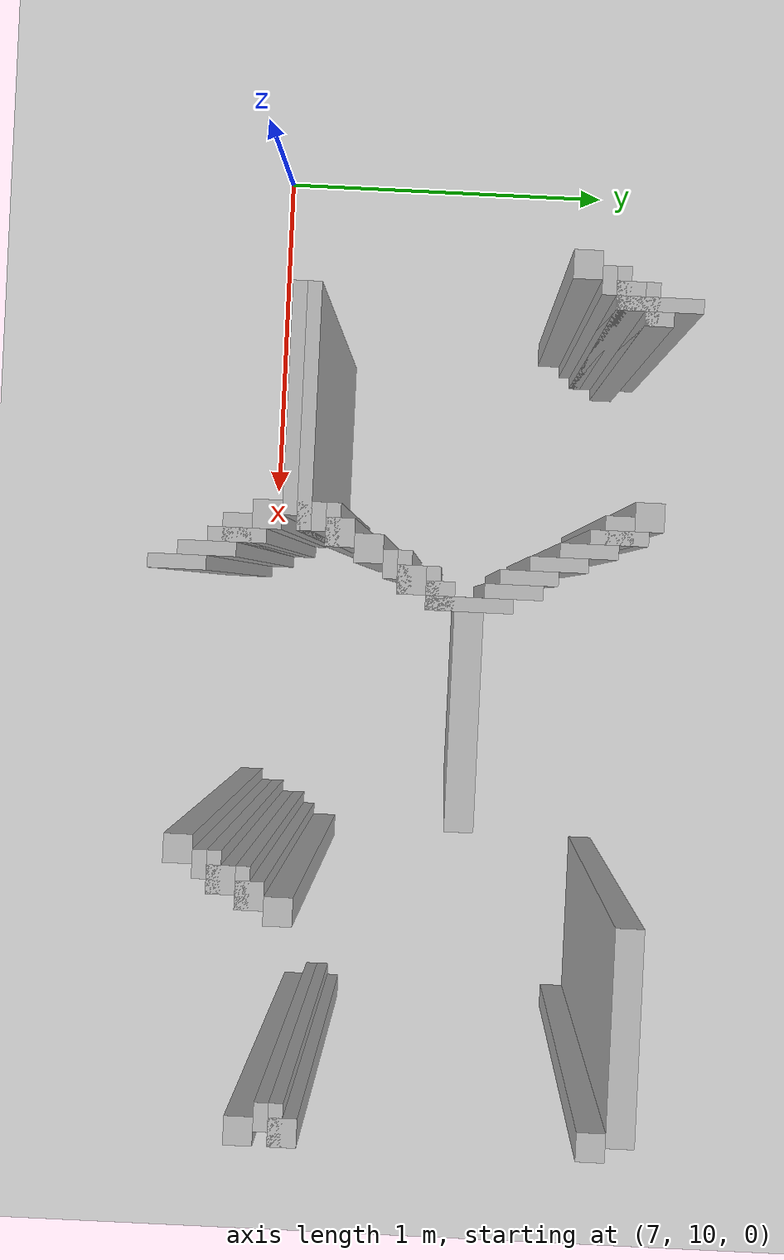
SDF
<sdf version="1.6">
 <world name="slam_world">
  <model name="ground_plane">
   <static>true</static>
   <link name="link">
    <collision name="collision">
     <geometry><plane><normal>0 0 1</normal><size>100 100</size></plane></geometry>
    </collision>
    <visual name="visual">
     <geometry><plane><normal>0 0 1</normal><size>100 100</size></plane></geometry>
     <material>
      <ambient>0.8 0.8 0.8 1</ambient>
      <diffuse>0.8 0.8 0.8 1</diffuse>
      <specular>0.8 0.8 0.8 1</specular>
     </material>
    </visual>
   </link>
  </model>
  <model name="wall_2157">
   <static>true</static>
   <pose>7.604408352668213 11.032482598607888 1.0 0 0 0</pose>
   <link name="link">
    <collision name="collision">
     <geometry><box><size>0.03480278422273782 0.2088167053364269 2.0</size></box></geometry>
    </collision>
    <visual name="visual">
     <geometry><box><size>0.03480278422273782 0.2088167053364269 2.0</size></box></geometry>
     <material><ambient>0.5 0.5 0.5 1</ambient><diffuse>0.7 0.7 0.7 1</diffuse></material>
    </visual>
   </link>
  </model>
  <model name="wall_2179">
   <static>true</static>
   <pose>7.6392111368909505 11.032482598607888 1.0 0 0 0</pose>
   <link name="link">
    <collision name="collision">
     <geometry><box><size>0.03480278422273782 0.06960556844547564 2.0</size></box></geometry>
    </collision>
    <visual name="visual">
     <geometry><box><size>0.03480278422273782 0.06960556844547564 2.0</size></box></geometry>
     <material><ambient>0.5 0.5 0.5 1</ambient><diffuse>0.7 0.7 0.7 1</diffuse></material>
    </visual>
   </link>
  </model>
  <model name="wall_2180">
   <static>true</static>
   <pose>8.109048723897912 11.032482598607888 1.0 0 0 0</pose>
   <link name="link">
    <collision name="collision">
     <geometry><box><size>0.06960556844547564 0.06960556844547564 2.0</size></box></geometry>
    </collision>
    <visual name="visual">
     <geometry><box><size>0.06960556844547564 0.06960556844547564 2.0</size></box></geometry>
     <material><ambient>0.5 0.5 0.5 1</ambient><diffuse>0.7 0.7 0.7 1</diffuse></material>
    </visual>
   </link>
  </model>
  <model name="wall_2181">
   <static>true</static>
   <pose>9.344547563805104 11.032482598607888 1.0 0 0 0</pose>
   <link name="link">
    <collision name="collision">
     <geometry><box><size>0.5220417633410672 0.06960556844547564 2.0</size></box></geometry>
    </collision>
    <visual name="visual">
     <geometry><box><size>0.5220417633410672 0.06960556844547564 2.0</size></box></geometry>
     <material><ambient>0.5 0.5 0.5 1</ambient><diffuse>0.7 0.7 0.7 1</diffuse></material>
    </visual>
   </link>
  </model>
  <model name="wall_2190">
   <static>true</static>
   <pose>7.604408352668213 11.01508120649652 1.0 0 0 0</pose>
   <link name="link">
    <collision name="collision">
     <geometry><box><size>0.10440835266821345 0.03480278422273782 2.0</size></box></geometry>
    </collision>
    <visual name="visual">
     <geometry><box><size>0.10440835266821345 0.03480278422273782 2.0</size></box></geometry>
     <material><ambient>0.5 0.5 0.5 1</ambient><diffuse>0.7 0.7 0.7 1</diffuse></material>
    </visual>
   </link>
  </model>
  <model name="wall_2191">
   <static>true</static>
   <pose>8.161252900232018 10.962877030162412 1.0 0 0 0</pose>
   <link name="link">
    <collision name="collision">
     <geometry><box><size>0.03480278422273782 0.13921113689095127 2.0</size></box></geometry>
    </collision>
    <visual name="visual">
     <geometry><box><size>0.03480278422273782 0.13921113689095127 2.0</size></box></geometry>
     <material><ambient>0.5 0.5 0.5 1</ambient><diffuse>0.7 0.7 0.7 1</diffuse></material>
    </visual>
   </link>
  </model>
  <model name="wall_2202">
   <static>true</static>
   <pose>7.587006960556844 10.962877030162412 1.0 0 0 0</pose>
   <link name="link">
    <collision name="collision">
     <geometry><box><size>0.06960556844547564 0.06960556844547564 2.0</size></box></geometry>
    </collision>
    <visual name="visual">
     <geometry><box><size>0.06960556844547564 0.06960556844547564 2.0</size></box></geometry>
     <material><ambient>0.5 0.5 0.5 1</ambient><diffuse>0.7 0.7 0.7 1</diffuse></material>
    </visual>
   </link>
  </model>
  <model name="wall_2203">
   <static>true</static>
   <pose>8.14385150812065 10.962877030162412 1.0 0 0 0</pose>
   <link name="link">
    <collision name="collision">
     <geometry><box><size>0.06960556844547564 0.06960556844547564 2.0</size></box></geometry>
    </collision>
    <visual name="visual">
     <geometry><box><size>0.06960556844547564 0.06960556844547564 2.0</size></box></geometry>
     <material><ambient>0.5 0.5 0.5 1</ambient><diffuse>0.7 0.7 0.7 1</diffuse></material>
    </visual>
   </link>
  </model>
  <model name="wall_2204">
   <static>true</static>
   <pose>9.605568445475638 10.962877030162412 1.0 0 0 0</pose>
   <link name="link">
    <collision name="collision">
     <geometry><box><size>0.06960556844547564 0.06960556844547564 2.0</size></box></geometry>
    </collision>
    <visual name="visual">
     <geometry><box><size>0.06960556844547564 0.06960556844547564 2.0</size></box></geometry>
     <material><ambient>0.5 0.5 0.5 1</ambient><diffuse>0.7 0.7 0.7 1</diffuse></material>
    </visual>
   </link>
  </model>
  <model name="wall_2214">
   <static>true</static>
   <pose>7.569605568445476 10.945475638051043 1.0 0 0 0</pose>
   <link name="link">
    <collision name="collision">
     <geometry><box><size>0.10440835266821345 0.03480278422273782 2.0</size></box></geometry>
    </collision>
    <visual name="visual">
     <geometry><box><size>0.10440835266821345 0.03480278422273782 2.0</size></box></geometry>
     <material><ambient>0.5 0.5 0.5 1</ambient><diffuse>0.7 0.7 0.7 1</diffuse></material>
    </visual>
   </link>
  </model>
  <model name="wall_2215">
   <static>true</static>
   <pose>8.196055684454755 10.893271461716937 1.0 0 0 0</pose>
   <link name="link">
    <collision name="collision">
     <geometry><box><size>0.03480278422273782 0.13921113689095127 2.0</size></box></geometry>
    </collision>
    <visual name="visual">
     <geometry><box><size>0.03480278422273782 0.13921113689095127 2.0</size></box></geometry>
     <material><ambient>0.5 0.5 0.5 1</ambient><diffuse>0.7 0.7 0.7 1</diffuse></material>
    </visual>
   </link>
  </model>
  <model name="wall_2224">
   <static>true</static>
   <pose>7.552204176334106 10.910672853828306 1.0 0 0 0</pose>
   <link name="link">
    <collision name="collision">
     <geometry><box><size>0.06960556844547564 0.03480278422273782 2.0</size></box></geometry>
    </collision>
    <visual name="visual">
     <geometry><box><size>0.06960556844547564 0.03480278422273782 2.0</size></box></geometry>
     <material><ambient>0.5 0.5 0.5 1</ambient><diffuse>0.7 0.7 0.7 1</diffuse></material>
    </visual>
   </link>
  </model>
  <model name="wall_2233">
   <static>true</static>
   <pose>7.517401392111369 10.8584686774942 1.0 0 0 0</pose>
   <link name="link">
    <collision name="collision">
     <geometry><box><size>0.06960556844547564 0.06960556844547564 2.0</size></box></geometry>
    </collision>
    <visual name="visual">
     <geometry><box><size>0.06960556844547564 0.06960556844547564 2.0</size></box></geometry>
     <material><ambient>0.5 0.5 0.5 1</ambient><diffuse>0.7 0.7 0.7 1</diffuse></material>
    </visual>
   </link>
  </model>
  <model name="wall_2234">
   <static>true</static>
   <pose>8.230858468677495 10.82366589327146 1.0 0 0 0</pose>
   <link name="link">
    <collision name="collision">
     <geometry><box><size>0.03480278422273782 0.13921113689095127 2.0</size></box></geometry>
    </collision>
    <visual name="visual">
     <geometry><box><size>0.03480278422273782 0.13921113689095127 2.0</size></box></geometry>
     <material><ambient>0.5 0.5 0.5 1</ambient><diffuse>0.7 0.7 0.7 1</diffuse></material>
    </visual>
   </link>
  </model>
  <model name="wall_2246">
   <static>true</static>
   <pose>8.265661252900232 10.754060324825986 1.0 0 0 0</pose>
   <link name="link">
    <collision name="collision">
     <geometry><box><size>0.03480278422273782 0.13921113689095127 2.0</size></box></geometry>
    </collision>
    <visual name="visual">
     <geometry><box><size>0.03480278422273782 0.13921113689095127 2.0</size></box></geometry>
     <material><ambient>0.5 0.5 0.5 1</ambient><diffuse>0.7 0.7 0.7 1</diffuse></material>
    </visual>
   </link>
  </model>
  <model name="wall_2258">
   <static>true</static>
   <pose>8.30046403712297 10.719257540603248 1.0 0 0 0</pose>
   <link name="link">
    <collision name="collision">
     <geometry><box><size>0.03480278422273782 0.13921113689095127 2.0</size></box></geometry>
    </collision>
    <visual name="visual">
     <geometry><box><size>0.03480278422273782 0.13921113689095127 2.0</size></box></geometry>
     <material><ambient>0.5 0.5 0.5 1</ambient><diffuse>0.7 0.7 0.7 1</diffuse></material>
    </visual>
   </link>
  </model>
  <model name="wall_2276">
   <static>true</static>
   <pose>8.335266821345707 10.614849187935034 1.0 0 0 0</pose>
   <link name="link">
    <collision name="collision">
     <geometry><box><size>0.03480278422273782 0.2088167053364269 2.0</size></box></geometry>
    </collision>
    <visual name="visual">
     <geometry><box><size>0.03480278422273782 0.2088167053364269 2.0</size></box></geometry>
     <material><ambient>0.5 0.5 0.5 1</ambient><diffuse>0.7 0.7 0.7 1</diffuse></material>
    </visual>
   </link>
  </model>
  <model name="wall_2295">
   <static>true</static>
   <pose>8.61368909512761 10.614849187935034 1.0 0 0 0</pose>
   <link name="link">
    <collision name="collision">
     <geometry><box><size>0.5220417633410672 0.06960556844547564 2.0</size></box></geometry>
    </collision>
    <visual name="visual">
     <geometry><box><size>0.5220417633410672 0.06960556844547564 2.0</size></box></geometry>
     <material><ambient>0.5 0.5 0.5 1</ambient><diffuse>0.7 0.7 0.7 1</diffuse></material>
    </visual>
   </link>
  </model>
  <model name="wall_2307">
   <static>true</static>
   <pose>8.317865429234338 10.54524361948956 1.0 0 0 0</pose>
   <link name="link">
    <collision name="collision">
     <geometry><box><size>0.06960556844547564 0.06960556844547564 2.0</size></box></geometry>
    </collision>
    <visual name="visual">
     <geometry><box><size>0.06960556844547564 0.06960556844547564 2.0</size></box></geometry>
     <material><ambient>0.5 0.5 0.5 1</ambient><diffuse>0.7 0.7 0.7 1</diffuse></material>
    </visual>
   </link>
  </model>
  <model name="wall_2318">
   <static>true</static>
   <pose>8.30046403712297 10.52784222737819 1.0 0 0 0</pose>
   <link name="link">
    <collision name="collision">
     <geometry><box><size>0.10440835266821345 0.03480278422273782 2.0</size></box></geometry>
    </collision>
    <visual name="visual">
     <geometry><box><size>0.10440835266821345 0.03480278422273782 2.0</size></box></geometry>
     <material><ambient>0.5 0.5 0.5 1</ambient><diffuse>0.7 0.7 0.7 1</diffuse></material>
    </visual>
   </link>
  </model>
  <model name="wall_2329">
   <static>true</static>
   <pose>8.2830626450116 10.475638051044083 1.0 0 0 0</pose>
   <link name="link">
    <collision name="collision">
     <geometry><box><size>0.06960556844547564 0.06960556844547564 2.0</size></box></geometry>
    </collision>
    <visual name="visual">
     <geometry><box><size>0.06960556844547564 0.06960556844547564 2.0</size></box></geometry>
     <material><ambient>0.5 0.5 0.5 1</ambient><diffuse>0.7 0.7 0.7 1</diffuse></material>
    </visual>
   </link>
  </model>
  <model name="wall_2340">
   <static>true</static>
   <pose>8.265661252900232 10.458236658932714 1.0 0 0 0</pose>
   <link name="link">
    <collision name="collision">
     <geometry><box><size>0.10440835266821345 0.03480278422273782 2.0</size></box></geometry>
    </collision>
    <visual name="visual">
     <geometry><box><size>0.10440835266821345 0.03480278422273782 2.0</size></box></geometry>
     <material><ambient>0.5 0.5 0.5 1</ambient><diffuse>0.7 0.7 0.7 1</diffuse></material>
    </visual>
   </link>
  </model>
  <model name="wall_2347">
   <static>true</static>
   <pose>8.248259860788863 10.423433874709977 1.0 0 0 0</pose>
   <link name="link">
    <collision name="collision">
     <geometry><box><size>0.06960556844547564 0.03480278422273782 2.0</size></box></geometry>
    </collision>
    <visual name="visual">
     <geometry><box><size>0.06960556844547564 0.03480278422273782 2.0</size></box></geometry>
     <material><ambient>0.5 0.5 0.5 1</ambient><diffuse>0.7 0.7 0.7 1</diffuse></material>
    </visual>
   </link>
  </model>
  <model name="wall_2356">
   <static>true</static>
   <pose>8.213457076566124 10.37122969837587 1.0 0 0 0</pose>
   <link name="link">
    <collision name="collision">
     <geometry><box><size>0.06960556844547564 0.06960556844547564 2.0</size></box></geometry>
    </collision>
    <visual name="visual">
     <geometry><box><size>0.06960556844547564 0.06960556844547564 2.0</size></box></geometry>
     <material><ambient>0.5 0.5 0.5 1</ambient><diffuse>0.7 0.7 0.7 1</diffuse></material>
    </visual>
   </link>
  </model>
  <model name="wall_2367">
   <static>true</static>
   <pose>8.178654292343387 10.301624129930394 1.0 0 0 0</pose>
   <link name="link">
    <collision name="collision">
     <geometry><box><size>0.06960556844547564 0.06960556844547564 2.0</size></box></geometry>
    </collision>
    <visual name="visual">
     <geometry><box><size>0.06960556844547564 0.06960556844547564 2.0</size></box></geometry>
     <material><ambient>0.5 0.5 0.5 1</ambient><diffuse>0.7 0.7 0.7 1</diffuse></material>
    </visual>
   </link>
  </model>
  <model name="wall_2378">
   <static>true</static>
   <pose>8.161252900232018 10.284222737819025 1.0 0 0 0</pose>
   <link name="link">
    <collision name="collision">
     <geometry><box><size>0.10440835266821345 0.03480278422273782 2.0</size></box></geometry>
    </collision>
    <visual name="visual">
     <geometry><box><size>0.10440835266821345 0.03480278422273782 2.0</size></box></geometry>
     <material><ambient>0.5 0.5 0.5 1</ambient><diffuse>0.7 0.7 0.7 1</diffuse></material>
    </visual>
   </link>
  </model>
  <model name="wall_2385">
   <static>true</static>
   <pose>8.14385150812065 10.232018561484919 1.0 0 0 0</pose>
   <link name="link">
    <collision name="collision">
     <geometry><box><size>0.06960556844547564 0.06960556844547564 2.0</size></box></geometry>
    </collision>
    <visual name="visual">
     <geometry><box><size>0.06960556844547564 0.06960556844547564 2.0</size></box></geometry>
     <material><ambient>0.5 0.5 0.5 1</ambient><diffuse>0.7 0.7 0.7 1</diffuse></material>
    </visual>
   </link>
  </model>
  <model name="wall_2386">
   <static>true</static>
   <pose>9.605568445475638 10.232018561484919 1.0 0 0 0</pose>
   <link name="link">
    <collision name="collision">
     <geometry><box><size>0.06960556844547564 0.06960556844547564 2.0</size></box></geometry>
    </collision>
    <visual name="visual">
     <geometry><box><size>0.06960556844547564 0.06960556844547564 2.0</size></box></geometry>
     <material><ambient>0.5 0.5 0.5 1</ambient><diffuse>0.7 0.7 0.7 1</diffuse></material>
    </visual>
   </link>
  </model>
  <model name="wall_2393">
   <static>true</static>
   <pose>7.882830626450116 10.214617169373549 1.0 0 0 0</pose>
   <link name="link">
    <collision name="collision">
     <geometry><box><size>0.5916473317865429 0.03480278422273782 2.0</size></box></geometry>
    </collision>
    <visual name="visual">
     <geometry><box><size>0.5916473317865429 0.03480278422273782 2.0</size></box></geometry>
     <material><ambient>0.5 0.5 0.5 1</ambient><diffuse>0.7 0.7 0.7 1</diffuse></material>
    </visual>
   </link>
  </model>
  <model name="wall_2394">
   <static>true</static>
   <pose>9.08352668213457 10.19721577726218 1.0 0 0 0</pose>
   <link name="link">
    <collision name="collision">
     <geometry><box><size>0.06960556844547564 0.06960556844547564 2.0</size></box></geometry>
    </collision>
    <visual name="visual">
     <geometry><box><size>0.06960556844547564 0.06960556844547564 2.0</size></box></geometry>
     <material><ambient>0.5 0.5 0.5 1</ambient><diffuse>0.7 0.7 0.7 1</diffuse></material>
    </visual>
   </link>
  </model>
  <model name="wall_2395">
   <static>true</static>
   <pose>9.588167053364268 10.214617169373549 1.0 0 0 0</pose>
   <link name="link">
    <collision name="collision">
     <geometry><box><size>0.10440835266821345 0.03480278422273782 2.0</size></box></geometry>
    </collision>
    <visual name="visual">
     <geometry><box><size>0.10440835266821345 0.03480278422273782 2.0</size></box></geometry>
     <material><ambient>0.5 0.5 0.5 1</ambient><diffuse>0.7 0.7 0.7 1</diffuse></material>
    </visual>
   </link>
  </model>
  <model name="wall_2402">
   <static>true</static>
   <pose>7.865429234338746 10.179814385150811 1.0 0 0 0</pose>
   <link name="link">
    <collision name="collision">
     <geometry><box><size>0.5568445475638051 0.03480278422273782 2.0</size></box></geometry>
    </collision>
    <visual name="visual">
     <geometry><box><size>0.5568445475638051 0.03480278422273782 2.0</size></box></geometry>
     <material><ambient>0.5 0.5 0.5 1</ambient><diffuse>0.7 0.7 0.7 1</diffuse></material>
    </visual>
   </link>
  </model>
  <model name="wall_2403">
   <static>true</static>
   <pose>9.5707656612529 10.179814385150811 1.0 0 0 0</pose>
   <link name="link">
    <collision name="collision">
     <geometry><box><size>0.06960556844547564 0.03480278422273782 2.0</size></box></geometry>
    </collision>
    <visual name="visual">
     <geometry><box><size>0.06960556844547564 0.03480278422273782 2.0</size></box></geometry>
     <material><ambient>0.5 0.5 0.5 1</ambient><diffuse>0.7 0.7 0.7 1</diffuse></material>
    </visual>
   </link>
  </model>
  <model name="wall_2411">
   <static>true</static>
   <pose>8.14385150812065 10.127610208816705 1.0 0 0 0</pose>
   <link name="link">
    <collision name="collision">
     <geometry><box><size>0.06960556844547564 0.06960556844547564 2.0</size></box></geometry>
    </collision>
    <visual name="visual">
     <geometry><box><size>0.06960556844547564 0.06960556844547564 2.0</size></box></geometry>
     <material><ambient>0.5 0.5 0.5 1</ambient><diffuse>0.7 0.7 0.7 1</diffuse></material>
    </visual>
   </link>
  </model>
  <model name="wall_2412">
   <static>true</static>
   <pose>9.048723897911833 10.127610208816705 1.0 0 0 0</pose>
   <link name="link">
    <collision name="collision">
     <geometry><box><size>0.06960556844547564 0.06960556844547564 2.0</size></box></geometry>
    </collision>
    <visual name="visual">
     <geometry><box><size>0.06960556844547564 0.06960556844547564 2.0</size></box></geometry>
     <material><ambient>0.5 0.5 0.5 1</ambient><diffuse>0.7 0.7 0.7 1</diffuse></material>
    </visual>
   </link>
  </model>
  <model name="wall_2413">
   <static>true</static>
   <pose>9.605568445475638 10.127610208816705 1.0 0 0 0</pose>
   <link name="link">
    <collision name="collision">
     <geometry><box><size>0.06960556844547564 0.06960556844547564 2.0</size></box></geometry>
    </collision>
    <visual name="visual">
     <geometry><box><size>0.06960556844547564 0.06960556844547564 2.0</size></box></geometry>
     <material><ambient>0.5 0.5 0.5 1</ambient><diffuse>0.7 0.7 0.7 1</diffuse></material>
    </visual>
   </link>
  </model>
  <model name="wall_2425">
   <static>true</static>
   <pose>8.196055684454755 10.058004640371228 1.0 0 0 0</pose>
   <link name="link">
    <collision name="collision">
     <geometry><box><size>0.03480278422273782 0.13921113689095127 2.0</size></box></geometry>
    </collision>
    <visual name="visual">
     <geometry><box><size>0.03480278422273782 0.13921113689095127 2.0</size></box></geometry>
     <material><ambient>0.5 0.5 0.5 1</ambient><diffuse>0.7 0.7 0.7 1</diffuse></material>
    </visual>
   </link>
  </model>
  <model name="wall_2426">
   <static>true</static>
   <pose>9.031322505800464 10.110208816705336 1.0 0 0 0</pose>
   <link name="link">
    <collision name="collision">
     <geometry><box><size>0.10440835266821345 0.03480278422273782 2.0</size></box></geometry>
    </collision>
    <visual name="visual">
     <geometry><box><size>0.10440835266821345 0.03480278422273782 2.0</size></box></geometry>
     <material><ambient>0.5 0.5 0.5 1</ambient><diffuse>0.7 0.7 0.7 1</diffuse></material>
    </visual>
   </link>
  </model>
  <model name="wall_2439">
   <static>true</static>
   <pose>8.178654292343387 10.058004640371228 1.0 0 0 0</pose>
   <link name="link">
    <collision name="collision">
     <geometry><box><size>0.06960556844547564 0.06960556844547564 2.0</size></box></geometry>
    </collision>
    <visual name="visual">
     <geometry><box><size>0.06960556844547564 0.06960556844547564 2.0</size></box></geometry>
     <material><ambient>0.5 0.5 0.5 1</ambient><diffuse>0.7 0.7 0.7 1</diffuse></material>
    </visual>
   </link>
  </model>
  <model name="wall_2440">
   <static>true</static>
   <pose>9.013921113689095 10.058004640371228 1.0 0 0 0</pose>
   <link name="link">
    <collision name="collision">
     <geometry><box><size>0.06960556844547564 0.06960556844547564 2.0</size></box></geometry>
    </collision>
    <visual name="visual">
     <geometry><box><size>0.06960556844547564 0.06960556844547564 2.0</size></box></geometry>
     <material><ambient>0.5 0.5 0.5 1</ambient><diffuse>0.7 0.7 0.7 1</diffuse></material>
    </visual>
   </link>
  </model>
  <model name="wall_2453">
   <static>true</static>
   <pose>8.230858468677495 9.988399071925754 1.0 0 0 0</pose>
   <link name="link">
    <collision name="collision">
     <geometry><box><size>0.03480278422273782 0.13921113689095127 2.0</size></box></geometry>
    </collision>
    <visual name="visual">
     <geometry><box><size>0.03480278422273782 0.13921113689095127 2.0</size></box></geometry>
     <material><ambient>0.5 0.5 0.5 1</ambient><diffuse>0.7 0.7 0.7 1</diffuse></material>
    </visual>
   </link>
  </model>
  <model name="wall_2454">
   <static>true</static>
   <pose>8.996519721577727 10.04060324825986 1.0 0 0 0</pose>
   <link name="link">
    <collision name="collision">
     <geometry><box><size>0.10440835266821345 0.03480278422273782 2.0</size></box></geometry>
    </collision>
    <visual name="visual">
     <geometry><box><size>0.10440835266821345 0.03480278422273782 2.0</size></box></geometry>
     <material><ambient>0.5 0.5 0.5 1</ambient><diffuse>0.7 0.7 0.7 1</diffuse></material>
    </visual>
   </link>
  </model>
  <model name="wall_2465">
   <static>true</static>
   <pose>8.979118329466356 10.005800464037122 1.0 0 0 0</pose>
   <link name="link">
    <collision name="collision">
     <geometry><box><size>0.06960556844547564 0.03480278422273782 2.0</size></box></geometry>
    </collision>
    <visual name="visual">
     <geometry><box><size>0.06960556844547564 0.03480278422273782 2.0</size></box></geometry>
     <material><ambient>0.5 0.5 0.5 1</ambient><diffuse>0.7 0.7 0.7 1</diffuse></material>
    </visual>
   </link>
  </model>
  <model name="wall_2475">
   <static>true</static>
   <pose>8.265661252900232 9.918793503480279 1.0 0 0 0</pose>
   <link name="link">
    <collision name="collision">
     <geometry><box><size>0.03480278422273782 0.13921113689095127 2.0</size></box></geometry>
    </collision>
    <visual name="visual">
     <geometry><box><size>0.03480278422273782 0.13921113689095127 2.0</size></box></geometry>
     <material><ambient>0.5 0.5 0.5 1</ambient><diffuse>0.7 0.7 0.7 1</diffuse></material>
    </visual>
   </link>
  </model>
  <model name="wall_2476">
   <static>true</static>
   <pose>8.944315545243619 9.953596287703016 1.0 0 0 0</pose>
   <link name="link">
    <collision name="collision">
     <geometry><box><size>0.06960556844547564 0.06960556844547564 2.0</size></box></geometry>
    </collision>
    <visual name="visual">
     <geometry><box><size>0.06960556844547564 0.06960556844547564 2.0</size></box></geometry>
     <material><ambient>0.5 0.5 0.5 1</ambient><diffuse>0.7 0.7 0.7 1</diffuse></material>
    </visual>
   </link>
  </model>
 </world>
</sdf>
